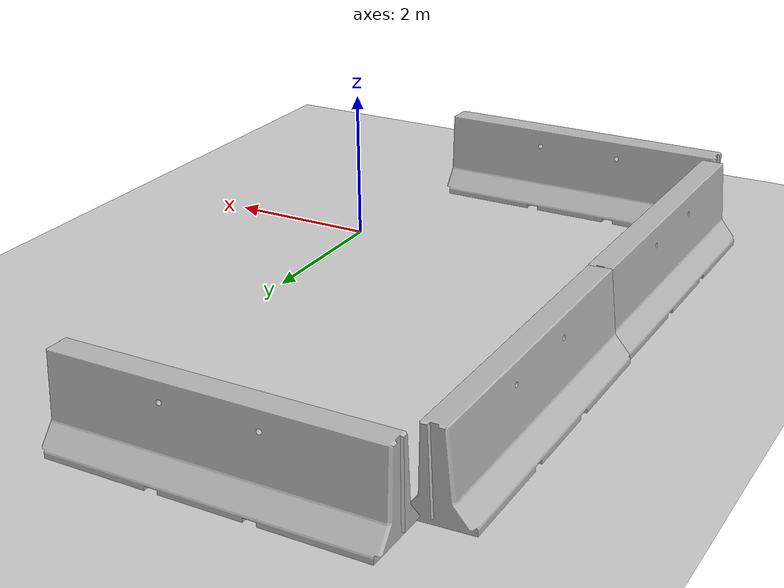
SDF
<sdf version="1.6">
 <world name="default">
  <model name="ground_plane">
   <static>1</static>
   <link name="link">
    <collision name="collision">
     <geometry><plane><normal>0 0 1</normal><size>100 100</size></plane></geometry>
     <surface><friction><ode><mu>100</mu><mu2>50</mu2></ode></friction></surface>
    </collision>
    <visual name="visual">
     <cast_shadows>0</cast_shadows>
     <geometry><plane><normal>0 0 1</normal><size>100 100</size></plane></geometry>
     <material>
      <script><uri>file://media/materials/scripts/gazebo.material</uri><name>Gazebo/Grey</name></script>
     </material>
    </visual>
   </link>
  </model>
  <model name="jersey_barrier_1">
   <link name="link">
    <inertial>
     <mass>1</mass>
     <inertia><ixx>1</ixx><ixy>0</ixy><ixz>0</ixz><iyy>1</iyy><iyz>0</iyz><izz>1</izz></inertia>
    </inertial>
    <visual name="visual">
     <geometry>
      <mesh><uri>model://jersey_barrier/meshes/jersey_barrier.dae</uri><scale>1 1 1</scale></mesh>
     </geometry>
     <material><shader type="vertex"><normal_map>__default__</normal_map></shader></material>
    </visual>
    <collision name="base">
     <pose>0 0 0.032258 0 -0 0</pose>
     <geometry><box><size>4.06542 0.8107 0.064516</size></box></geometry>
     <surface>
      <friction>
       <ode><mu>1</mu><mu2>1</mu2><fdir1>0 0 0</fdir1><slip1>0</slip1><slip2>0</slip2></ode>
       <torsional>
        <coefficient>1</coefficient>
        <patch_radius>0</patch_radius>
        <surface_radius>0</surface_radius>
        <use_patch_radius>1</use_patch_radius>
        <ode><slip>0</slip></ode>
       </torsional>
      </friction>
      <bounce><restitution_coefficient>0</restitution_coefficient><threshold>1e+06</threshold></bounce>
      <contact>
       <collide_without_contact>0</collide_without_contact>
       <collide_without_contact_bitmask>1</collide_without_contact_bitmask>
       <collide_bitmask>1</collide_bitmask>
       <ode>
        <soft_cfm>0</soft_cfm>
        <soft_erp>0.2</soft_erp>
        <kp>1e+13</kp>
        <kd>1</kd>
        <max_vel>0.01</max_vel>
        <min_depth>0</min_depth>
       </ode>
       <bullet>
        <split_impulse>1</split_impulse>
        <split_impulse_penetration_threshold>-0.01</split_impulse_penetration_threshold>
        <soft_cfm>0</soft_cfm>
        <soft_erp>0.2</soft_erp>
        <kp>1e+13</kp>
        <kd>1</kd>
       </bullet>
      </contact>
     </surface>
    </collision>
    <collision name="upright">
     <pose>0 0 0.5715 0 -0 0</pose>
     <geometry><box><size>4.06542 0.3063 1.143</size></box></geometry>
     <surface>
      <friction>
       <ode><mu>1</mu><mu2>1</mu2><fdir1>0 0 0</fdir1><slip1>0</slip1><slip2>0</slip2></ode>
       <torsional>
        <coefficient>1</coefficient>
        <patch_radius>0</patch_radius>
        <surface_radius>0</surface_radius>
        <use_patch_radius>1</use_patch_radius>
        <ode><slip>0</slip></ode>
       </torsional>
      </friction>
      <bounce><restitution_coefficient>0</restitution_coefficient><threshold>1e+06</threshold></bounce>
      <contact>
       <collide_without_contact>0</collide_without_contact>
       <collide_without_contact_bitmask>1</collide_without_contact_bitmask>
       <collide_bitmask>1</collide_bitmask>
       <ode>
        <soft_cfm>0</soft_cfm>
        <soft_erp>0.2</soft_erp>
        <kp>1e+13</kp>
        <kd>1</kd>
        <max_vel>0.01</max_vel>
        <min_depth>0</min_depth>
       </ode>
       <bullet>
        <split_impulse>1</split_impulse>
        <split_impulse_penetration_threshold>-0.01</split_impulse_penetration_threshold>
        <soft_cfm>0</soft_cfm>
        <soft_erp>0.2</soft_erp>
        <kp>1e+13</kp>
        <kd>1</kd>
       </bullet>
      </contact>
     </surface>
    </collision>
    <collision name="left-angle">
     <pose>0 -0.224 0.2401 0.9 -0 0</pose>
     <geometry><box><size>4.06542 0.5 0.064516</size></box></geometry>
     <surface>
      <friction>
       <ode><mu>1</mu><mu2>1</mu2><fdir1>0 0 0</fdir1><slip1>0</slip1><slip2>0</slip2></ode>
       <torsional>
        <coefficient>1</coefficient>
        <patch_radius>0</patch_radius>
        <surface_radius>0</surface_radius>
        <use_patch_radius>1</use_patch_radius>
        <ode><slip>0</slip></ode>
       </torsional>
      </friction>
      <bounce><restitution_coefficient>0</restitution_coefficient><threshold>1e+06</threshold></bounce>
      <contact>
       <collide_without_contact>0</collide_without_contact>
       <collide_without_contact_bitmask>1</collide_without_contact_bitmask>
       <collide_bitmask>1</collide_bitmask>
       <ode>
        <soft_cfm>0</soft_cfm>
        <soft_erp>0.2</soft_erp>
        <kp>1e+13</kp>
        <kd>1</kd>
        <max_vel>0.01</max_vel>
        <min_depth>0</min_depth>
       </ode>
       <bullet>
        <split_impulse>1</split_impulse>
        <split_impulse_penetration_threshold>-0.01</split_impulse_penetration_threshold>
        <soft_cfm>0</soft_cfm>
        <soft_erp>0.2</soft_erp>
        <kp>1e+13</kp>
        <kd>1</kd>
       </bullet>
      </contact>
     </surface>
    </collision>
    <collision name="base2">
     <pose>0 0 0.1 0 -0 0</pose>
     <geometry><box><size>4.06542 0.65 0.1</size></box></geometry>
     <surface>
      <friction>
       <ode><mu>1</mu><mu2>1</mu2><fdir1>0 0 0</fdir1><slip1>0</slip1><slip2>0</slip2></ode>
       <torsional>
        <coefficient>1</coefficient>
        <patch_radius>0</patch_radius>
        <surface_radius>0</surface_radius>
        <use_patch_radius>1</use_patch_radius>
        <ode><slip>0</slip></ode>
       </torsional>
      </friction>
      <bounce><restitution_coefficient>0</restitution_coefficient><threshold>1e+06</threshold></bounce>
      <contact>
       <collide_without_contact>0</collide_without_contact>
       <collide_without_contact_bitmask>1</collide_without_contact_bitmask>
       <collide_bitmask>1</collide_bitmask>
       <ode>
        <soft_cfm>0</soft_cfm>
        <soft_erp>0.2</soft_erp>
        <kp>1e+13</kp>
        <kd>1</kd>
        <max_vel>0.01</max_vel>
        <min_depth>0</min_depth>
       </ode>
       <bullet>
        <split_impulse>1</split_impulse>
        <split_impulse_penetration_threshold>-0.01</split_impulse_penetration_threshold>
        <soft_cfm>0</soft_cfm>
        <soft_erp>0.2</soft_erp>
        <kp>1e+13</kp>
        <kd>1</kd>
       </bullet>
      </contact>
     </surface>
    </collision>
    <collision name="base3">
     <pose>0 0 0.2 0 -0 0</pose>
     <geometry><box><size>4.06542 0.5 0.1</size></box></geometry>
     <surface>
      <friction>
       <ode><mu>1</mu><mu2>1</mu2><fdir1>0 0 0</fdir1><slip1>0</slip1><slip2>0</slip2></ode>
       <torsional>
        <coefficient>1</coefficient>
        <patch_radius>0</patch_radius>
        <surface_radius>0</surface_radius>
        <use_patch_radius>1</use_patch_radius>
        <ode><slip>0</slip></ode>
       </torsional>
      </friction>
      <bounce><restitution_coefficient>0</restitution_coefficient><threshold>1e+06</threshold></bounce>
      <contact>
       <collide_without_contact>0</collide_without_contact>
       <collide_without_contact_bitmask>1</collide_without_contact_bitmask>
       <collide_bitmask>1</collide_bitmask>
       <ode>
        <soft_cfm>0</soft_cfm>
        <soft_erp>0.2</soft_erp>
        <kp>1e+13</kp>
        <kd>1</kd>
        <max_vel>0.01</max_vel>
        <min_depth>0</min_depth>
       </ode>
       <bullet>
        <split_impulse>1</split_impulse>
        <split_impulse_penetration_threshold>-0.01</split_impulse_penetration_threshold>
        <soft_cfm>0</soft_cfm>
        <soft_erp>0.2</soft_erp>
        <kp>1e+13</kp>
        <kd>1</kd>
       </bullet>
      </contact>
     </surface>
    </collision>
    <collision name="right-angle">
     <pose>0 0.224 0.2401 -0.9 0 0</pose>
     <geometry><box><size>4.06542 0.5 0.064516</size></box></geometry>
     <surface>
      <friction>
       <ode><mu>1</mu><mu2>1</mu2><fdir1>0 0 0</fdir1><slip1>0</slip1><slip2>0</slip2></ode>
       <torsional>
        <coefficient>1</coefficient>
        <patch_radius>0</patch_radius>
        <surface_radius>0</surface_radius>
        <use_patch_radius>1</use_patch_radius>
        <ode><slip>0</slip></ode>
       </torsional>
      </friction>
      <bounce><restitution_coefficient>0</restitution_coefficient><threshold>1e+06</threshold></bounce>
      <contact>
       <collide_without_contact>0</collide_without_contact>
       <collide_without_contact_bitmask>1</collide_without_contact_bitmask>
       <collide_bitmask>1</collide_bitmask>
       <ode>
        <soft_cfm>0</soft_cfm>
        <soft_erp>0.2</soft_erp>
        <kp>1e+13</kp>
        <kd>1</kd>
        <max_vel>0.01</max_vel>
        <min_depth>0</min_depth>
       </ode>
       <bullet>
        <split_impulse>1</split_impulse>
        <split_impulse_penetration_threshold>-0.01</split_impulse_penetration_threshold>
        <soft_cfm>0</soft_cfm>
        <soft_erp>0.2</soft_erp>
        <kp>1e+13</kp>
        <kd>1</kd>
       </bullet>
      </contact>
     </surface>
    </collision>
   </link>
   <static>1</static>
   <pose>-4.42746 3.95526 0 0.035823 3.4e-05 1.56986</pose>
  </model>
  <model name="jersey_barrier_0_clone_2_0_0_clone_0_clone_clone_clone">
   <link name="link">
    <inertial>
     <mass>1</mass>
     <inertia><ixx>1</ixx><ixy>0</ixy><ixz>0</ixz><iyy>1</iyy><iyz>0</iyz><izz>1</izz></inertia>
    </inertial>
    <visual name="visual">
     <geometry>
      <mesh><uri>model://jersey_barrier/meshes/jersey_barrier.dae</uri><scale>1 1 1</scale></mesh>
     </geometry>
     <material><shader type="vertex"><normal_map>__default__</normal_map></shader></material>
    </visual>
    <collision name="upright">
     <pose>0 0 0.5715 0 -0 0</pose>
     <geometry><box><size>4.06542 0.3063 1.143</size></box></geometry>
     <surface>
      <friction>
       <ode><mu>1</mu><mu2>1</mu2><fdir1>0 0 0</fdir1><slip1>0</slip1><slip2>0</slip2></ode>
       <torsional>
        <coefficient>1</coefficient>
        <patch_radius>0</patch_radius>
        <surface_radius>0</surface_radius>
        <use_patch_radius>1</use_patch_radius>
        <ode><slip>0</slip></ode>
       </torsional>
      </friction>
      <bounce><restitution_coefficient>0</restitution_coefficient><threshold>1e+06</threshold></bounce>
      <contact>
       <collide_without_contact>0</collide_without_contact>
       <collide_without_contact_bitmask>1</collide_without_contact_bitmask>
       <collide_bitmask>1</collide_bitmask>
       <ode>
        <soft_cfm>0</soft_cfm>
        <soft_erp>0.2</soft_erp>
        <kp>1e+13</kp>
        <kd>1</kd>
        <max_vel>0.01</max_vel>
        <min_depth>0</min_depth>
       </ode>
       <bullet>
        <split_impulse>1</split_impulse>
        <split_impulse_penetration_threshold>-0.01</split_impulse_penetration_threshold>
        <soft_cfm>0</soft_cfm>
        <soft_erp>0.2</soft_erp>
        <kp>1e+13</kp>
        <kd>1</kd>
       </bullet>
      </contact>
     </surface>
    </collision>
    <collision name="base3">
     <pose>0 0 0.2 0 -0 0</pose>
     <geometry><box><size>4.06542 0.5 0.1</size></box></geometry>
     <surface>
      <friction>
       <ode><mu>1</mu><mu2>1</mu2><fdir1>0 0 0</fdir1><slip1>0</slip1><slip2>0</slip2></ode>
       <torsional>
        <coefficient>1</coefficient>
        <patch_radius>0</patch_radius>
        <surface_radius>0</surface_radius>
        <use_patch_radius>1</use_patch_radius>
        <ode><slip>0</slip></ode>
       </torsional>
      </friction>
      <bounce><restitution_coefficient>0</restitution_coefficient><threshold>1e+06</threshold></bounce>
      <contact>
       <collide_without_contact>0</collide_without_contact>
       <collide_without_contact_bitmask>1</collide_without_contact_bitmask>
       <collide_bitmask>1</collide_bitmask>
       <ode>
        <soft_cfm>0</soft_cfm>
        <soft_erp>0.2</soft_erp>
        <kp>1e+13</kp>
        <kd>1</kd>
        <max_vel>0.01</max_vel>
        <min_depth>0</min_depth>
       </ode>
       <bullet>
        <split_impulse>1</split_impulse>
        <split_impulse_penetration_threshold>-0.01</split_impulse_penetration_threshold>
        <soft_cfm>0</soft_cfm>
        <soft_erp>0.2</soft_erp>
        <kp>1e+13</kp>
        <kd>1</kd>
       </bullet>
      </contact>
     </surface>
    </collision>
    <collision name="left-angle">
     <pose>0 -0.224 0.2401 0.9 -0 0</pose>
     <geometry><box><size>4.06542 0.5 0.064516</size></box></geometry>
     <surface>
      <friction>
       <ode><mu>1</mu><mu2>1</mu2><fdir1>0 0 0</fdir1><slip1>0</slip1><slip2>0</slip2></ode>
       <torsional>
        <coefficient>1</coefficient>
        <patch_radius>0</patch_radius>
        <surface_radius>0</surface_radius>
        <use_patch_radius>1</use_patch_radius>
        <ode><slip>0</slip></ode>
       </torsional>
      </friction>
      <bounce><restitution_coefficient>0</restitution_coefficient><threshold>1e+06</threshold></bounce>
      <contact>
       <collide_without_contact>0</collide_without_contact>
       <collide_without_contact_bitmask>1</collide_without_contact_bitmask>
       <collide_bitmask>1</collide_bitmask>
       <ode>
        <soft_cfm>0</soft_cfm>
        <soft_erp>0.2</soft_erp>
        <kp>1e+13</kp>
        <kd>1</kd>
        <max_vel>0.01</max_vel>
        <min_depth>0</min_depth>
       </ode>
       <bullet>
        <split_impulse>1</split_impulse>
        <split_impulse_penetration_threshold>-0.01</split_impulse_penetration_threshold>
        <soft_cfm>0</soft_cfm>
        <soft_erp>0.2</soft_erp>
        <kp>1e+13</kp>
        <kd>1</kd>
       </bullet>
      </contact>
     </surface>
    </collision>
    <collision name="base">
     <pose>0 0 0.032258 0 -0 0</pose>
     <geometry><box><size>4.06542 0.8107 0.064516</size></box></geometry>
     <surface>
      <friction>
       <ode><mu>1</mu><mu2>1</mu2><fdir1>0 0 0</fdir1><slip1>0</slip1><slip2>0</slip2></ode>
       <torsional>
        <coefficient>1</coefficient>
        <patch_radius>0</patch_radius>
        <surface_radius>0</surface_radius>
        <use_patch_radius>1</use_patch_radius>
        <ode><slip>0</slip></ode>
       </torsional>
      </friction>
      <bounce><restitution_coefficient>0</restitution_coefficient><threshold>1e+06</threshold></bounce>
      <contact>
       <collide_without_contact>0</collide_without_contact>
       <collide_without_contact_bitmask>1</collide_without_contact_bitmask>
       <collide_bitmask>1</collide_bitmask>
       <ode>
        <soft_cfm>0</soft_cfm>
        <soft_erp>0.2</soft_erp>
        <kp>1e+13</kp>
        <kd>1</kd>
        <max_vel>0.01</max_vel>
        <min_depth>0</min_depth>
       </ode>
       <bullet>
        <split_impulse>1</split_impulse>
        <split_impulse_penetration_threshold>-0.01</split_impulse_penetration_threshold>
        <soft_cfm>0</soft_cfm>
        <soft_erp>0.2</soft_erp>
        <kp>1e+13</kp>
        <kd>1</kd>
       </bullet>
      </contact>
     </surface>
    </collision>
    <collision name="base2">
     <pose>0 0 0.1 0 -0 0</pose>
     <geometry><box><size>4.06542 0.65 0.1</size></box></geometry>
     <surface>
      <friction>
       <ode><mu>1</mu><mu2>1</mu2><fdir1>0 0 0</fdir1><slip1>0</slip1><slip2>0</slip2></ode>
       <torsional>
        <coefficient>1</coefficient>
        <patch_radius>0</patch_radius>
        <surface_radius>0</surface_radius>
        <use_patch_radius>1</use_patch_radius>
        <ode><slip>0</slip></ode>
       </torsional>
      </friction>
      <bounce><restitution_coefficient>0</restitution_coefficient><threshold>1e+06</threshold></bounce>
      <contact>
       <collide_without_contact>0</collide_without_contact>
       <collide_without_contact_bitmask>1</collide_without_contact_bitmask>
       <collide_bitmask>1</collide_bitmask>
       <ode>
        <soft_cfm>0</soft_cfm>
        <soft_erp>0.2</soft_erp>
        <kp>1e+13</kp>
        <kd>1</kd>
        <max_vel>0.01</max_vel>
        <min_depth>0</min_depth>
       </ode>
       <bullet>
        <split_impulse>1</split_impulse>
        <split_impulse_penetration_threshold>-0.01</split_impulse_penetration_threshold>
        <soft_cfm>0</soft_cfm>
        <soft_erp>0.2</soft_erp>
        <kp>1e+13</kp>
        <kd>1</kd>
       </bullet>
      </contact>
     </surface>
    </collision>
    <collision name="right-angle">
     <pose>0 0.224 0.2401 -0.9 0 0</pose>
     <geometry><box><size>4.06542 0.5 0.064516</size></box></geometry>
     <surface>
      <friction>
       <ode><mu>1</mu><mu2>1</mu2><fdir1>0 0 0</fdir1><slip1>0</slip1><slip2>0</slip2></ode>
       <torsional>
        <coefficient>1</coefficient>
        <patch_radius>0</patch_radius>
        <surface_radius>0</surface_radius>
        <use_patch_radius>1</use_patch_radius>
        <ode><slip>0</slip></ode>
       </torsional>
      </friction>
      <bounce><restitution_coefficient>0</restitution_coefficient><threshold>1e+06</threshold></bounce>
      <contact>
       <collide_without_contact>0</collide_without_contact>
       <collide_without_contact_bitmask>1</collide_without_contact_bitmask>
       <collide_bitmask>1</collide_bitmask>
       <ode>
        <soft_cfm>0</soft_cfm>
        <soft_erp>0.2</soft_erp>
        <kp>1e+13</kp>
        <kd>1</kd>
        <max_vel>0.01</max_vel>
        <min_depth>0</min_depth>
       </ode>
       <bullet>
        <split_impulse>1</split_impulse>
        <split_impulse_penetration_threshold>-0.01</split_impulse_penetration_threshold>
        <soft_cfm>0</soft_cfm>
        <soft_erp>0.2</soft_erp>
        <kp>1e+13</kp>
        <kd>1</kd>
       </bullet>
      </contact>
     </surface>
    </collision>
   </link>
   <static>1</static>
   <pose>-4.39641 -0.076444 0 0 -0 1.56566</pose>
  </model>
  <model name="jersey_barrier_0_clone_2">
   <link name="link">
    <inertial>
     <mass>1</mass>
     <inertia><ixx>1</ixx><ixy>0</ixy><ixz>0</ixz><iyy>1</iyy><iyz>0</iyz><izz>1</izz></inertia>
    </inertial>
    <visual name="visual">
     <geometry>
      <mesh><uri>model://jersey_barrier/meshes/jersey_barrier.dae</uri><scale>1 1 1</scale></mesh>
     </geometry>
     <material><shader type="vertex"><normal_map>__default__</normal_map></shader></material>
    </visual>
    <collision name="upright">
     <pose>0 0 0.5715 0 -0 0</pose>
     <geometry><box><size>4.06542 0.3063 1.143</size></box></geometry>
     <surface>
      <friction>
       <ode><mu>1</mu><mu2>1</mu2><fdir1>0 0 0</fdir1><slip1>0</slip1><slip2>0</slip2></ode>
       <torsional>
        <coefficient>1</coefficient>
        <patch_radius>0</patch_radius>
        <surface_radius>0</surface_radius>
        <use_patch_radius>1</use_patch_radius>
        <ode><slip>0</slip></ode>
       </torsional>
      </friction>
      <bounce><restitution_coefficient>0</restitution_coefficient><threshold>1e+06</threshold></bounce>
      <contact>
       <collide_without_contact>0</collide_without_contact>
       <collide_without_contact_bitmask>1</collide_without_contact_bitmask>
       <collide_bitmask>1</collide_bitmask>
       <ode>
        <soft_cfm>0</soft_cfm>
        <soft_erp>0.2</soft_erp>
        <kp>1e+13</kp>
        <kd>1</kd>
        <max_vel>0.01</max_vel>
        <min_depth>0</min_depth>
       </ode>
       <bullet>
        <split_impulse>1</split_impulse>
        <split_impulse_penetration_threshold>-0.01</split_impulse_penetration_threshold>
        <soft_cfm>0</soft_cfm>
        <soft_erp>0.2</soft_erp>
        <kp>1e+13</kp>
        <kd>1</kd>
       </bullet>
      </contact>
     </surface>
    </collision>
    <collision name="base3">
     <pose>0 0 0.2 0 -0 0</pose>
     <geometry><box><size>4.06542 0.5 0.1</size></box></geometry>
     <surface>
      <friction>
       <ode><mu>1</mu><mu2>1</mu2><fdir1>0 0 0</fdir1><slip1>0</slip1><slip2>0</slip2></ode>
       <torsional>
        <coefficient>1</coefficient>
        <patch_radius>0</patch_radius>
        <surface_radius>0</surface_radius>
        <use_patch_radius>1</use_patch_radius>
        <ode><slip>0</slip></ode>
       </torsional>
      </friction>
      <bounce><restitution_coefficient>0</restitution_coefficient><threshold>1e+06</threshold></bounce>
      <contact>
       <collide_without_contact>0</collide_without_contact>
       <collide_without_contact_bitmask>1</collide_without_contact_bitmask>
       <collide_bitmask>1</collide_bitmask>
       <ode>
        <soft_cfm>0</soft_cfm>
        <soft_erp>0.2</soft_erp>
        <kp>1e+13</kp>
        <kd>1</kd>
        <max_vel>0.01</max_vel>
        <min_depth>0</min_depth>
       </ode>
       <bullet>
        <split_impulse>1</split_impulse>
        <split_impulse_penetration_threshold>-0.01</split_impulse_penetration_threshold>
        <soft_cfm>0</soft_cfm>
        <soft_erp>0.2</soft_erp>
        <kp>1e+13</kp>
        <kd>1</kd>
       </bullet>
      </contact>
     </surface>
    </collision>
    <collision name="base">
     <pose>0 0 0.032258 0 -0 0</pose>
     <geometry><box><size>4.06542 0.8107 0.064516</size></box></geometry>
     <surface>
      <friction>
       <ode><mu>1</mu><mu2>1</mu2><fdir1>0 0 0</fdir1><slip1>0</slip1><slip2>0</slip2></ode>
       <torsional>
        <coefficient>1</coefficient>
        <patch_radius>0</patch_radius>
        <surface_radius>0</surface_radius>
        <use_patch_radius>1</use_patch_radius>
        <ode><slip>0</slip></ode>
       </torsional>
      </friction>
      <bounce><restitution_coefficient>0</restitution_coefficient><threshold>1e+06</threshold></bounce>
      <contact>
       <collide_without_contact>0</collide_without_contact>
       <collide_without_contact_bitmask>1</collide_without_contact_bitmask>
       <collide_bitmask>1</collide_bitmask>
       <ode>
        <soft_cfm>0</soft_cfm>
        <soft_erp>0.2</soft_erp>
        <kp>1e+13</kp>
        <kd>1</kd>
        <max_vel>0.01</max_vel>
        <min_depth>0</min_depth>
       </ode>
       <bullet>
        <split_impulse>1</split_impulse>
        <split_impulse_penetration_threshold>-0.01</split_impulse_penetration_threshold>
        <soft_cfm>0</soft_cfm>
        <soft_erp>0.2</soft_erp>
        <kp>1e+13</kp>
        <kd>1</kd>
       </bullet>
      </contact>
     </surface>
    </collision>
    <collision name="base2">
     <pose>0 0 0.1 0 -0 0</pose>
     <geometry><box><size>4.06542 0.65 0.1</size></box></geometry>
     <surface>
      <friction>
       <ode><mu>1</mu><mu2>1</mu2><fdir1>0 0 0</fdir1><slip1>0</slip1><slip2>0</slip2></ode>
       <torsional>
        <coefficient>1</coefficient>
        <patch_radius>0</patch_radius>
        <surface_radius>0</surface_radius>
        <use_patch_radius>1</use_patch_radius>
        <ode><slip>0</slip></ode>
       </torsional>
      </friction>
      <bounce><restitution_coefficient>0</restitution_coefficient><threshold>1e+06</threshold></bounce>
      <contact>
       <collide_without_contact>0</collide_without_contact>
       <collide_without_contact_bitmask>1</collide_without_contact_bitmask>
       <collide_bitmask>1</collide_bitmask>
       <ode>
        <soft_cfm>0</soft_cfm>
        <soft_erp>0.2</soft_erp>
        <kp>1e+13</kp>
        <kd>1</kd>
        <max_vel>0.01</max_vel>
        <min_depth>0</min_depth>
       </ode>
       <bullet>
        <split_impulse>1</split_impulse>
        <split_impulse_penetration_threshold>-0.01</split_impulse_penetration_threshold>
        <soft_cfm>0</soft_cfm>
        <soft_erp>0.2</soft_erp>
        <kp>1e+13</kp>
        <kd>1</kd>
       </bullet>
      </contact>
     </surface>
    </collision>
    <collision name="left-angle">
     <pose>0 -0.224 0.2401 0.9 -0 0</pose>
     <geometry><box><size>4.06542 0.5 0.064516</size></box></geometry>
     <surface>
      <friction>
       <ode><mu>1</mu><mu2>1</mu2><fdir1>0 0 0</fdir1><slip1>0</slip1><slip2>0</slip2></ode>
       <torsional>
        <coefficient>1</coefficient>
        <patch_radius>0</patch_radius>
        <surface_radius>0</surface_radius>
        <use_patch_radius>1</use_patch_radius>
        <ode><slip>0</slip></ode>
       </torsional>
      </friction>
      <bounce><restitution_coefficient>0</restitution_coefficient><threshold>1e+06</threshold></bounce>
      <contact>
       <collide_without_contact>0</collide_without_contact>
       <collide_without_contact_bitmask>1</collide_without_contact_bitmask>
       <collide_bitmask>1</collide_bitmask>
       <ode>
        <soft_cfm>0</soft_cfm>
        <soft_erp>0.2</soft_erp>
        <kp>1e+13</kp>
        <kd>1</kd>
        <max_vel>0.01</max_vel>
        <min_depth>0</min_depth>
       </ode>
       <bullet>
        <split_impulse>1</split_impulse>
        <split_impulse_penetration_threshold>-0.01</split_impulse_penetration_threshold>
        <soft_cfm>0</soft_cfm>
        <soft_erp>0.2</soft_erp>
        <kp>1e+13</kp>
        <kd>1</kd>
       </bullet>
      </contact>
     </surface>
    </collision>
    <collision name="right-angle">
     <pose>0 0.224 0.2401 -0.9 0 0</pose>
     <geometry><box><size>4.06542 0.5 0.064516</size></box></geometry>
     <surface>
      <friction>
       <ode><mu>1</mu><mu2>1</mu2><fdir1>0 0 0</fdir1><slip1>0</slip1><slip2>0</slip2></ode>
       <torsional>
        <coefficient>1</coefficient>
        <patch_radius>0</patch_radius>
        <surface_radius>0</surface_radius>
        <use_patch_radius>1</use_patch_radius>
        <ode><slip>0</slip></ode>
       </torsional>
      </friction>
      <bounce><restitution_coefficient>0</restitution_coefficient><threshold>1e+06</threshold></bounce>
      <contact>
       <collide_without_contact>0</collide_without_contact>
       <collide_without_contact_bitmask>1</collide_without_contact_bitmask>
       <collide_bitmask>1</collide_bitmask>
       <ode>
        <soft_cfm>0</soft_cfm>
        <soft_erp>0.2</soft_erp>
        <kp>1e+13</kp>
        <kd>1</kd>
        <max_vel>0.01</max_vel>
        <min_depth>0</min_depth>
       </ode>
       <bullet>
        <split_impulse>1</split_impulse>
        <split_impulse_penetration_threshold>-0.01</split_impulse_penetration_threshold>
        <soft_cfm>0</soft_cfm>
        <soft_erp>0.2</soft_erp>
        <kp>1e+13</kp>
        <kd>1</kd>
       </bullet>
      </contact>
     </surface>
    </collision>
   </link>
   <static>1</static>
   <pose>-2.37045 -2.36278 0 0 -0 0</pose>
  </model>
  <model name="jersey_barrier_0_clone_2_2">
   <link name="link">
    <inertial>
     <mass>1</mass>
     <inertia><ixx>1</ixx><ixy>0</ixy><ixz>0</ixz><iyy>1</iyy><iyz>0</iyz><izz>1</izz></inertia>
    </inertial>
    <visual name="visual">
     <geometry>
      <mesh><uri>model://jersey_barrier/meshes/jersey_barrier.dae</uri><scale>1 1 1</scale></mesh>
     </geometry>
     <material><shader type="vertex"><normal_map>__default__</normal_map></shader></material>
    </visual>
    <collision name="upright">
     <pose>0 0 0.5715 0 -0 0</pose>
     <geometry><box><size>4.06542 0.3063 1.143</size></box></geometry>
     <surface>
      <friction>
       <ode><mu>1</mu><mu2>1</mu2><fdir1>0 0 0</fdir1><slip1>0</slip1><slip2>0</slip2></ode>
       <torsional>
        <coefficient>1</coefficient>
        <patch_radius>0</patch_radius>
        <surface_radius>0</surface_radius>
        <use_patch_radius>1</use_patch_radius>
        <ode><slip>0</slip></ode>
       </torsional>
      </friction>
      <bounce><restitution_coefficient>0</restitution_coefficient><threshold>1e+06</threshold></bounce>
      <contact>
       <collide_without_contact>0</collide_without_contact>
       <collide_without_contact_bitmask>1</collide_without_contact_bitmask>
       <collide_bitmask>1</collide_bitmask>
       <ode>
        <soft_cfm>0</soft_cfm>
        <soft_erp>0.2</soft_erp>
        <kp>1e+13</kp>
        <kd>1</kd>
        <max_vel>0.01</max_vel>
        <min_depth>0</min_depth>
       </ode>
       <bullet>
        <split_impulse>1</split_impulse>
        <split_impulse_penetration_threshold>-0.01</split_impulse_penetration_threshold>
        <soft_cfm>0</soft_cfm>
        <soft_erp>0.2</soft_erp>
        <kp>1e+13</kp>
        <kd>1</kd>
       </bullet>
      </contact>
     </surface>
    </collision>
    <collision name="base3">
     <pose>0 0 0.2 0 -0 0</pose>
     <geometry><box><size>4.06542 0.5 0.1</size></box></geometry>
     <surface>
      <friction>
       <ode><mu>1</mu><mu2>1</mu2><fdir1>0 0 0</fdir1><slip1>0</slip1><slip2>0</slip2></ode>
       <torsional>
        <coefficient>1</coefficient>
        <patch_radius>0</patch_radius>
        <surface_radius>0</surface_radius>
        <use_patch_radius>1</use_patch_radius>
        <ode><slip>0</slip></ode>
       </torsional>
      </friction>
      <bounce><restitution_coefficient>0</restitution_coefficient><threshold>1e+06</threshold></bounce>
      <contact>
       <collide_without_contact>0</collide_without_contact>
       <collide_without_contact_bitmask>1</collide_without_contact_bitmask>
       <collide_bitmask>1</collide_bitmask>
       <ode>
        <soft_cfm>0</soft_cfm>
        <soft_erp>0.2</soft_erp>
        <kp>1e+13</kp>
        <kd>1</kd>
        <max_vel>0.01</max_vel>
        <min_depth>0</min_depth>
       </ode>
       <bullet>
        <split_impulse>1</split_impulse>
        <split_impulse_penetration_threshold>-0.01</split_impulse_penetration_threshold>
        <soft_cfm>0</soft_cfm>
        <soft_erp>0.2</soft_erp>
        <kp>1e+13</kp>
        <kd>1</kd>
       </bullet>
      </contact>
     </surface>
    </collision>
    <collision name="base">
     <pose>0 0 0.032258 0 -0 0</pose>
     <geometry><box><size>4.06542 0.8107 0.064516</size></box></geometry>
     <surface>
      <friction>
       <ode><mu>1</mu><mu2>1</mu2><fdir1>0 0 0</fdir1><slip1>0</slip1><slip2>0</slip2></ode>
       <torsional>
        <coefficient>1</coefficient>
        <patch_radius>0</patch_radius>
        <surface_radius>0</surface_radius>
        <use_patch_radius>1</use_patch_radius>
        <ode><slip>0</slip></ode>
       </torsional>
      </friction>
      <bounce><restitution_coefficient>0</restitution_coefficient><threshold>1e+06</threshold></bounce>
      <contact>
       <collide_without_contact>0</collide_without_contact>
       <collide_without_contact_bitmask>1</collide_without_contact_bitmask>
       <collide_bitmask>1</collide_bitmask>
       <ode>
        <soft_cfm>0</soft_cfm>
        <soft_erp>0.2</soft_erp>
        <kp>1e+13</kp>
        <kd>1</kd>
        <max_vel>0.01</max_vel>
        <min_depth>0</min_depth>
       </ode>
       <bullet>
        <split_impulse>1</split_impulse>
        <split_impulse_penetration_threshold>-0.01</split_impulse_penetration_threshold>
        <soft_cfm>0</soft_cfm>
        <soft_erp>0.2</soft_erp>
        <kp>1e+13</kp>
        <kd>1</kd>
       </bullet>
      </contact>
     </surface>
    </collision>
    <collision name="base2">
     <pose>0 0 0.1 0 -0 0</pose>
     <geometry><box><size>4.06542 0.65 0.1</size></box></geometry>
     <surface>
      <friction>
       <ode><mu>1</mu><mu2>1</mu2><fdir1>0 0 0</fdir1><slip1>0</slip1><slip2>0</slip2></ode>
       <torsional>
        <coefficient>1</coefficient>
        <patch_radius>0</patch_radius>
        <surface_radius>0</surface_radius>
        <use_patch_radius>1</use_patch_radius>
        <ode><slip>0</slip></ode>
       </torsional>
      </friction>
      <bounce><restitution_coefficient>0</restitution_coefficient><threshold>1e+06</threshold></bounce>
      <contact>
       <collide_without_contact>0</collide_without_contact>
       <collide_without_contact_bitmask>1</collide_without_contact_bitmask>
       <collide_bitmask>1</collide_bitmask>
       <ode>
        <soft_cfm>0</soft_cfm>
        <soft_erp>0.2</soft_erp>
        <kp>1e+13</kp>
        <kd>1</kd>
        <max_vel>0.01</max_vel>
        <min_depth>0</min_depth>
       </ode>
       <bullet>
        <split_impulse>1</split_impulse>
        <split_impulse_penetration_threshold>-0.01</split_impulse_penetration_threshold>
        <soft_cfm>0</soft_cfm>
        <soft_erp>0.2</soft_erp>
        <kp>1e+13</kp>
        <kd>1</kd>
       </bullet>
      </contact>
     </surface>
    </collision>
    <collision name="left-angle">
     <pose>0 -0.224 0.2401 0.9 -0 0</pose>
     <geometry><box><size>4.06542 0.5 0.064516</size></box></geometry>
     <surface>
      <friction>
       <ode><mu>1</mu><mu2>1</mu2><fdir1>0 0 0</fdir1><slip1>0</slip1><slip2>0</slip2></ode>
       <torsional>
        <coefficient>1</coefficient>
        <patch_radius>0</patch_radius>
        <surface_radius>0</surface_radius>
        <use_patch_radius>1</use_patch_radius>
        <ode><slip>0</slip></ode>
       </torsional>
      </friction>
      <bounce><restitution_coefficient>0</restitution_coefficient><threshold>1e+06</threshold></bounce>
      <contact>
       <collide_without_contact>0</collide_without_contact>
       <collide_without_contact_bitmask>1</collide_without_contact_bitmask>
       <collide_bitmask>1</collide_bitmask>
       <ode>
        <soft_cfm>0</soft_cfm>
        <soft_erp>0.2</soft_erp>
        <kp>1e+13</kp>
        <kd>1</kd>
        <max_vel>0.01</max_vel>
        <min_depth>0</min_depth>
       </ode>
       <bullet>
        <split_impulse>1</split_impulse>
        <split_impulse_penetration_threshold>-0.01</split_impulse_penetration_threshold>
        <soft_cfm>0</soft_cfm>
        <soft_erp>0.2</soft_erp>
        <kp>1e+13</kp>
        <kd>1</kd>
       </bullet>
      </contact>
     </surface>
    </collision>
    <collision name="right-angle">
     <pose>0 0.224 0.2401 -0.9 0 0</pose>
     <geometry><box><size>4.06542 0.5 0.064516</size></box></geometry>
     <surface>
      <friction>
       <ode><mu>1</mu><mu2>1</mu2><fdir1>0 0 0</fdir1><slip1>0</slip1><slip2>0</slip2></ode>
       <torsional>
        <coefficient>1</coefficient>
        <patch_radius>0</patch_radius>
        <surface_radius>0</surface_radius>
        <use_patch_radius>1</use_patch_radius>
        <ode><slip>0</slip></ode>
       </torsional>
      </friction>
      <bounce><restitution_coefficient>0</restitution_coefficient><threshold>1e+06</threshold></bounce>
      <contact>
       <collide_without_contact>0</collide_without_contact>
       <collide_without_contact_bitmask>1</collide_without_contact_bitmask>
       <collide_bitmask>1</collide_bitmask>
       <ode>
        <soft_cfm>0</soft_cfm>
        <soft_erp>0.2</soft_erp>
        <kp>1e+13</kp>
        <kd>1</kd>
        <max_vel>0.01</max_vel>
        <min_depth>0</min_depth>
       </ode>
       <bullet>
        <split_impulse>1</split_impulse>
        <split_impulse_penetration_threshold>-0.01</split_impulse_penetration_threshold>
        <soft_cfm>0</soft_cfm>
        <soft_erp>0.2</soft_erp>
        <kp>1e+13</kp>
        <kd>1</kd>
       </bullet>
      </contact>
     </surface>
    </collision>
   </link>
   <static>1</static>
   <pose>-2.21283 6.3442 0 0 -0 0</pose>
  </model>
 </world>
</sdf>
